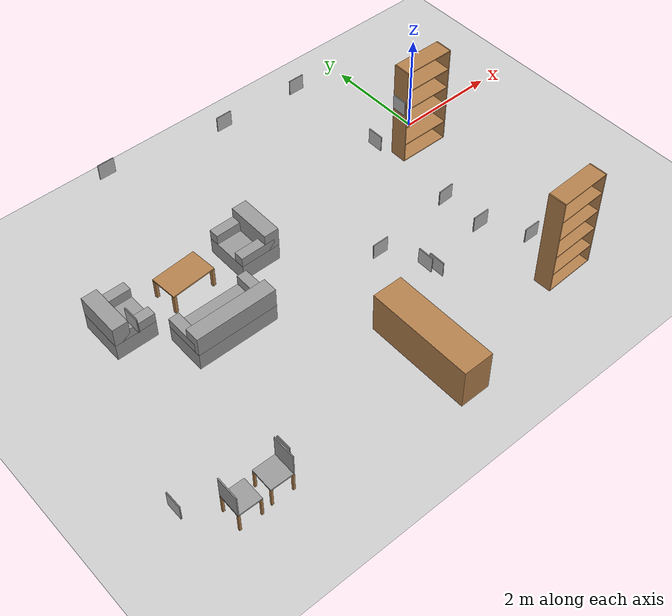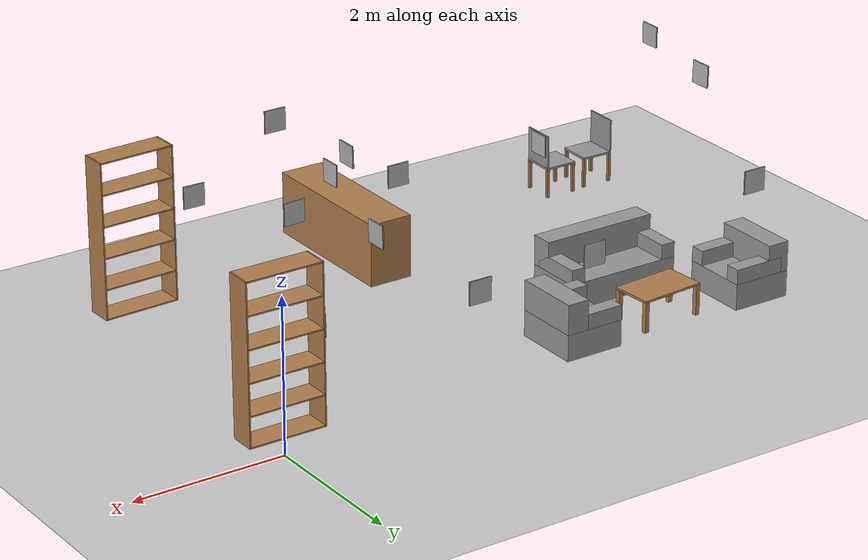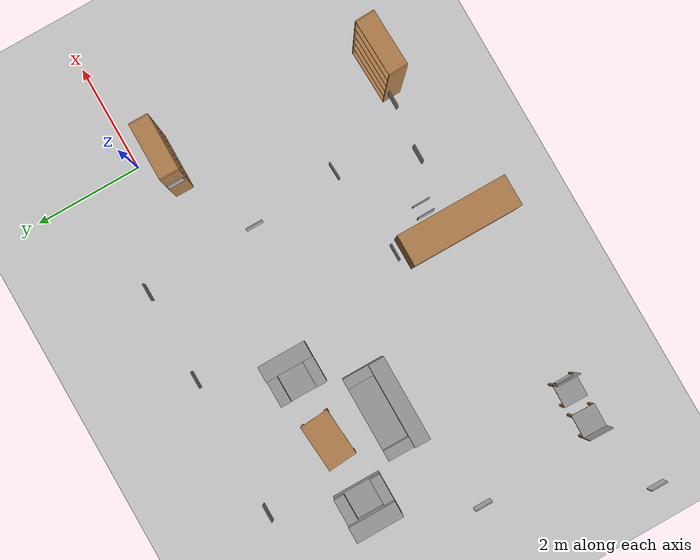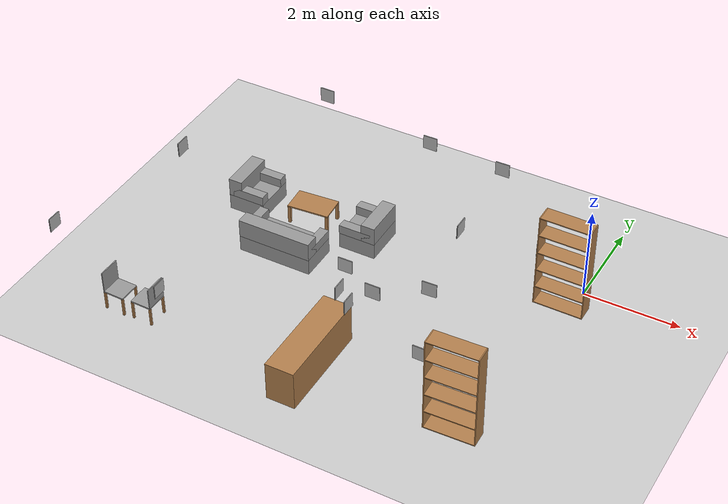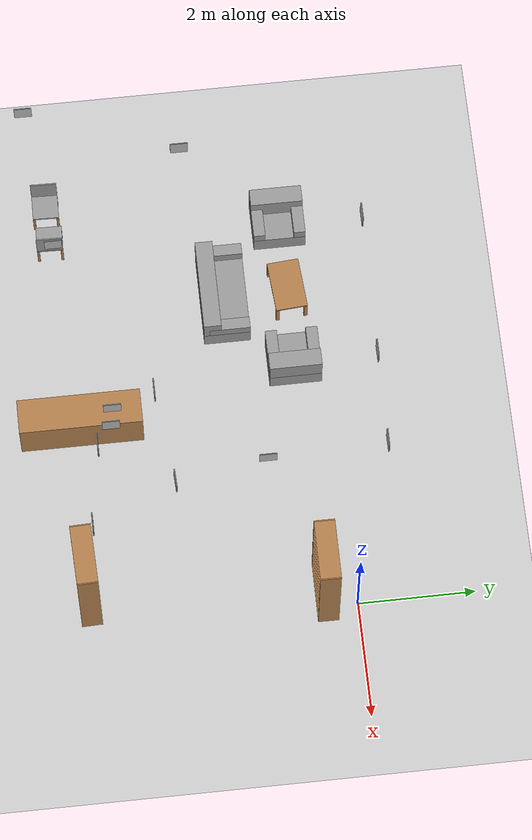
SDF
<sdf version="1.6">
 <world name="GrannyAnnie">
  <model name="ground_plane">
   <static>1</static>
   <link name="link">
    <collision name="collision">
     <geometry><plane><normal>0 0 1</normal><size>100 100</size></plane></geometry>
     <surface><friction><ode><mu>100</mu><mu2>50</mu2></ode></friction></surface>
    </collision>
    <visual name="visual">
     <cast_shadows>0</cast_shadows>
     <geometry><plane><normal>0 0 1</normal><size>100 100</size></plane></geometry>
     <material>
      <script><uri>file://media/materials/scripts/gazebo.material</uri><name>Gazebo/Grey</name></script>
     </material>
    </visual>
    <velocity_decay><linear>0</linear><angular>0</angular></velocity_decay>
   </link>
  </model>
  <model name="tag_0">
   <pose>-8.90283 -4.82563 1.77057 0 1.56824 0</pose>
   <static>1</static>
   <link name="fronttag">
    <pose>0 0 0.01 0 -0 0</pose>
    <collision name="collision"><geometry><box><size>0.3 0.3 0.01</size></box></geometry></collision>
    <visual name="visual">
     <geometry><box><size>0.3 0.3 0.01</size></box></geometry>
     <material>
      <script><uri>file://tags_material/scripts/tags.material</uri><name>Tag36_11_00000</name></script>
     </material>
    </visual>
   </link>
   <link name="backcover">
    <collision name="collision"><geometry><box><size>0.3 0.3 0.01</size></box></geometry></collision>
    <visual name="visual"><geometry><box><size>0.3 0.3 0.01</size></box></geometry></visual>
   </link>
   <static>0</static>
  </model>
  <model name="tag_1">
   <pose>-3.79959 0.736049 1.82503 1.56834 -0 0</pose>
   <static>1</static>
   <link name="fronttag">
    <pose>0 0 0.01 0 -0 0</pose>
    <collision name="collision"><geometry><box><size>0.3 0.3 0.01</size></box></geometry></collision>
    <visual name="visual">
     <geometry><box><size>0.3 0.3 0.01</size></box></geometry>
     <material>
      <script><uri>file://tags_material/scripts/tags.material</uri><name>Tag36_11_00001</name></script>
     </material>
    </visual>
   </link>
   <link name="backcover">
    <collision name="collision"><geometry><box><size>0.3 0.3 0.01</size></box></geometry></collision>
    <visual name="visual"><geometry><box><size>0.3 0.3 0.01</size></box></geometry></visual>
   </link>
   <static>0</static>
  </model>
  <model name="tag_2">
   <pose>-2.19541 0.724153 1.76356 1.57188 -0 0</pose>
   <static>1</static>
   <link name="fronttag">
    <pose>0 0 0.01 0 -0 0</pose>
    <collision name="collision"><geometry><box><size>0.3 0.3 0.01</size></box></geometry></collision>
    <visual name="visual">
     <geometry><box><size>0.3 0.3 0.01</size></box></geometry>
     <material>
      <script><uri>file://tags_material/scripts/tags.material</uri><name>Tag36_11_00002</name></script>
     </material>
    </visual>
   </link>
   <link name="backcover">
    <collision name="collision"><geometry><box><size>0.3 0.3 0.01</size></box></geometry></collision>
    <visual name="visual"><geometry><box><size>0.3 0.3 0.01</size></box></geometry></visual>
   </link>
   <static>0</static>
  </model>
  <model name="tag_4">
   <pose>-3.59641 -3.06982 1.55694 -1.56469 0 0</pose>
   <static>1</static>
   <link name="fronttag">
    <pose>0 0 0.01 0 -0 0</pose>
    <collision name="collision"><geometry><box><size>0.3 0.3 0.01</size></box></geometry></collision>
    <visual name="visual">
     <geometry><box><size>0.3 0.3 0.01</size></box></geometry>
     <material>
      <script><uri>file://tags_material/scripts/tags.material</uri><name>Tag36_11_00004</name></script>
     </material>
    </visual>
   </link>
   <link name="backcover">
    <collision name="collision"><geometry><box><size>0.3 0.3 0.01</size></box></geometry></collision>
    <visual name="visual"><geometry><box><size>0.3 0.3 0.01</size></box></geometry></visual>
   </link>
   <static>0</static>
  </model>
  <model name="tag_5">
   <pose>-3.30159 -3.79558 1.65775 0 -1.53884 0</pose>
   <static>1</static>
   <link name="fronttag">
    <pose>0 0 0.01 0 -0 0</pose>
    <collision name="collision"><geometry><box><size>0.3 0.3 0.01</size></box></geometry></collision>
    <visual name="visual">
     <geometry><box><size>0.3 0.3 0.01</size></box></geometry>
     <material>
      <script><uri>file://tags_material/scripts/tags.material</uri><name>Tag36_11_00005</name></script>
     </material>
    </visual>
   </link>
   <link name="backcover">
    <collision name="collision"><geometry><box><size>0.3 0.3 0.01</size></box></geometry></collision>
    <visual name="visual"><geometry><box><size>0.3 0.3 0.01</size></box></geometry></visual>
   </link>
   <static>0</static>
  </model>
  <model name="tag_6">
   <pose>-1.946 -2.8722 1.52035 -1.52458 -1.56567 -2e-06</pose>
   <static>1</static>
   <link name="fronttag">
    <pose>0 0 0.01 0 -0 0</pose>
    <collision name="collision"><geometry><box><size>0.3 0.3 0.01</size></box></geometry></collision>
    <visual name="visual">
     <geometry><box><size>0.3 0.3 0.01</size></box></geometry>
     <material>
      <script><uri>file://tags_material/scripts/tags.material</uri><name>Tag36_11_00006</name></script>
     </material>
    </visual>
   </link>
   <link name="backcover">
    <collision name="collision"><geometry><box><size>0.3 0.3 0.01</size></box></geometry></collision>
    <visual name="visual"><geometry><box><size>0.3 0.3 0.01</size></box></geometry></visual>
   </link>
   <static>0</static>
  </model>
  <model name="tag_11">
   <pose>-2.09998 -1.29478 1.76493 0 -1.55113 0</pose>
   <static>1</static>
   <link name="fronttag">
    <pose>0 0 0.01 0 -0 0</pose>
    <collision name="collision"><geometry><box><size>0.3 0.3 0.01</size></box></geometry></collision>
    <visual name="visual">
     <geometry><box><size>0.3 0.3 0.01</size></box></geometry>
     <material>
      <script><uri>file://tags_material/scripts/tags.material</uri><name>Tag36_11_00011</name></script>
     </material>
    </visual>
   </link>
   <link name="backcover">
    <collision name="collision"><geometry><box><size>0.3 0.3 0.01</size></box></geometry></collision>
    <visual name="visual"><geometry><box><size>0.3 0.3 0.01</size></box></geometry></visual>
   </link>
   <static>0</static>
  </model>
  <model name="tag_12">
   <pose>-2.44858 -4.10191 2.20444 -1.56693 0 0</pose>
   <static>1</static>
   <link name="fronttag">
    <pose>0 0 0.01 0 -0 0</pose>
    <collision name="collision"><geometry><box><size>0.3 0.3 0.01</size></box></geometry></collision>
    <visual name="visual">
     <geometry><box><size>0.3 0.3 0.01</size></box></geometry>
     <material>
      <script><uri>file://tags_material/scripts/tags.material</uri><name>Tag36_11_00012</name></script>
     </material>
    </visual>
   </link>
   <link name="backcover">
    <collision name="collision"><geometry><box><size>0.3 0.3 0.01</size></box></geometry></collision>
    <visual name="visual"><geometry><box><size>0.3 0.3 0.01</size></box></geometry></visual>
   </link>
   <static>0</static>
  </model>
  <model name="tag_13">
   <pose>-0.785442 -0.509094 1.27848 0 -1.56858 0</pose>
   <static>1</static>
   <link name="fronttag">
    <pose>0 0 0.01 0 -0 0</pose>
    <collision name="collision"><geometry><box><size>0.3 0.3 0.01</size></box></geometry></collision>
    <visual name="visual">
     <geometry><box><size>0.3 0.3 0.01</size></box></geometry>
     <material>
      <script><uri>file://tags_material/scripts/tags.material</uri><name>Tag36_11_00013</name></script>
     </material>
    </visual>
   </link>
   <link name="backcover">
    <collision name="collision"><geometry><box><size>0.3 0.3 0.01</size></box></geometry></collision>
    <visual name="visual"><geometry><box><size>0.3 0.3 0.01</size></box></geometry></visual>
   </link>
   <static>0</static>
  </model>
  <model name="tag_14">
   <pose>-7.70318 -2.23139 2.27545 0 1.54163 0</pose>
   <static>1</static>
   <link name="fronttag">
    <pose>0 0 0.01 0 -0 0</pose>
    <collision name="collision"><geometry><box><size>0.3 0.3 0.01</size></box></geometry></collision>
    <visual name="visual">
     <geometry><box><size>0.3 0.3 0.01</size></box></geometry>
     <material>
      <script><uri>file://tags_material/scripts/tags.material</uri><name>Tag36_11_00014</name></script>
     </material>
    </visual>
   </link>
   <link name="backcover">
    <collision name="collision"><geometry><box><size>0.3 0.3 0.01</size></box></geometry></collision>
    <visual name="visual"><geometry><box><size>0.3 0.3 0.01</size></box></geometry></visual>
   </link>
   <static>0</static>
  </model>
  <model name="tag_15">
   <pose>-6.16342 0.735901 2.18535 1.56173 -0 0</pose>
   <static>1</static>
   <link name="fronttag">
    <pose>0 0 0.01 0 -0 0</pose>
    <collision name="collision"><geometry><box><size>0.3 0.3 0.01</size></box></geometry></collision>
    <visual name="visual">
     <geometry><box><size>0.3 0.3 0.01</size></box></geometry>
     <material>
      <script><uri>file://tags_material/scripts/tags.material</uri><name>Tag36_11_00015</name></script>
     </material>
    </visual>
   </link>
   <link name="backcover">
    <collision name="collision"><geometry><box><size>0.3 0.3 0.01</size></box></geometry></collision>
    <visual name="visual"><geometry><box><size>0.3 0.3 0.01</size></box></geometry></visual>
   </link>
   <static>0</static>
  </model>
  <model name="tag_16">
   <pose>-6.83691 -4.53136 0.739113 0 1.57048 0</pose>
   <static>1</static>
   <link name="fronttag">
    <pose>0 0 0.01 0 -0 0</pose>
    <collision name="collision"><geometry><box><size>0.3 0.3 0.01</size></box></geometry></collision>
    <visual name="visual">
     <geometry><box><size>0.3 0.3 0.01</size></box></geometry>
     <material>
      <script><uri>file://tags_material/scripts/tags.material</uri><name>Tag36_11_00000</name></script>
     </material>
    </visual>
   </link>
   <link name="backcover">
    <collision name="collision"><geometry><box><size>0.3 0.3 0.01</size></box></geometry></collision>
    <visual name="visual"><geometry><box><size>0.3 0.3 0.01</size></box></geometry></visual>
   </link>
   <static>0</static>
  </model>
  <model name="tag_17">
   <pose>-1.37962 -4.30217 1.36859 1.57346 -0 0</pose>
   <static>1</static>
   <link name="fronttag">
    <pose>0 0 0.01 0 -0 0</pose>
    <collision name="collision"><geometry><box><size>0.3 0.3 0.01</size></box></geometry></collision>
    <visual name="visual">
     <geometry><box><size>0.3 0.3 0.01</size></box></geometry>
     <material>
      <script><uri>file://tags_material/scripts/tags.material</uri><name>Tag36_11_00017</name></script>
     </material>
    </visual>
   </link>
   <link name="backcover">
    <collision name="collision"><geometry><box><size>0.3 0.3 0.01</size></box></geometry></collision>
    <visual name="visual"><geometry><box><size>0.3 0.3 0.01</size></box></geometry></visual>
   </link>
   <static>0</static>
  </model>
  <model name="tag_18">
   <pose>-3.09629 -3.84297 1.43623 0 1.55626 0</pose>
   <static>1</static>
   <link name="fronttag">
    <pose>0 0 0.01 0 -0 0</pose>
    <collision name="collision"><geometry><box><size>0.3 0.3 0.01</size></box></geometry></collision>
    <visual name="visual">
     <geometry><box><size>0.3 0.3 0.01</size></box></geometry>
     <material>
      <script><uri>file://tags_material/scripts/tags.material</uri><name>Tag36_11_00018</name></script>
     </material>
    </visual>
   </link>
   <link name="backcover">
    <collision name="collision"><geometry><box><size>0.3 0.3 0.01</size></box></geometry></collision>
    <visual name="visual"><geometry><box><size>0.3 0.3 0.01</size></box></geometry></visual>
   </link>
   <static>0</static>
  </model>
  <model name="silla_2">
   <link name="silla_link">
    <inertial>
     <pose>0.0215 0 0.353 0 -0 0</pose>
     <mass>2</mass>
     <inertia>
      <ixx>0.674432</ixx>
      <ixy>0</ixy>
      <ixz>-0.012986</ixz>
      <iyy>0.682753</iyy>
      <iyz>0</iyz>
      <izz>0.675561</izz>
     </inertia>
    </inertial>
    <collision name="silla_link_collision">
     <pose>0 0 0.415 0 -0 0</pose>
     <geometry><box><size>0.45 0.45 0.03</size></box></geometry>
     <surface><friction><ode><mu>1</mu><mu2>1</mu2></ode></friction></surface>
    </collision>
    <collision name="silla_link_collision_pata_1_link">
     <pose>0.205 0.205 0.2 0 -0 0</pose>
     <geometry><box><size>0.04 0.04 0.4</size></box></geometry>
     <surface><friction><ode><mu>1</mu><mu2>1</mu2></ode></friction></surface>
     <surface><friction><ode><mu>1</mu><mu2>1</mu2></ode></friction></surface>
    </collision>
    <collision name="silla_link_collision_pata_2_link">
     <pose>0.205 -0.205 0.2 0 -0 0</pose>
     <geometry><box><size>0.04 0.04 0.4</size></box></geometry>
     <surface><friction><ode><mu>1</mu><mu2>1</mu2></ode></friction></surface>
     <surface><friction><ode><mu>1</mu><mu2>1</mu2></ode></friction></surface>
    </collision>
    <collision name="silla_link_collision_pata_3_link">
     <pose>-0.205 -0.205 0.2 0 -0 0</pose>
     <geometry><box><size>0.04 0.04 0.4</size></box></geometry>
     <surface><friction><ode><mu>1</mu><mu2>1</mu2></ode></friction></surface>
     <surface><friction><ode><mu>1</mu><mu2>1</mu2></ode></friction></surface>
    </collision>
    <collision name="silla_link_collision_pata_4_link">
     <pose>-0.205 0.205 0.2 0 -0 0</pose>
     <geometry><box><size>0.04 0.04 0.4</size></box></geometry>
     <surface><friction><ode><mu>1</mu><mu2>1</mu2></ode></friction></surface>
     <surface><friction><ode><mu>1</mu><mu2>1</mu2></ode></friction></surface>
    </collision>
    <collision name="silla_link_collision_respaldo_link">
     <pose>0.215 0 0.655 0 -0 0</pose>
     <geometry><box><size>0.02 0.45 0.45</size></box></geometry>
     <surface><friction><ode><mu>1</mu><mu2>1</mu2></ode></friction></surface>
     <surface><friction><ode><mu>1</mu><mu2>1</mu2></ode></friction></surface>
    </collision>
    <visual name="silla_link_visual">
     <pose>0 0 0.415 0 -0 0</pose>
     <geometry><box><size>0.45 0.45 0.03</size></box></geometry>
     <material><script><name>Gazebo/Grey</name><uri>__default__</uri></script></material>
    </visual>
    <visual name="silla_link_visual_pata_1_link">
     <pose>0.205 0.205 0.2 0 -0 0</pose>
     <geometry><box><size>0.04 0.04 0.4</size></box></geometry>
     <material><script><name>Gazebo/Wood</name><uri>__default__</uri></script></material>
    </visual>
    <visual name="silla_link_visual_pata_2_link">
     <pose>0.205 -0.205 0.2 0 -0 0</pose>
     <geometry><box><size>0.04 0.04 0.4</size></box></geometry>
     <material><script><name>Gazebo/Wood</name><uri>__default__</uri></script></material>
    </visual>
    <visual name="silla_link_visual_pata_3_link">
     <pose>-0.205 -0.205 0.2 0 -0 0</pose>
     <geometry><box><size>0.04 0.04 0.4</size></box></geometry>
     <material><script><name>Gazebo/Wood</name><uri>__default__</uri></script></material>
    </visual>
    <visual name="silla_link_visual_pata_4_link">
     <pose>-0.205 0.205 0.2 0 -0 0</pose>
     <geometry><box><size>0.04 0.04 0.4</size></box></geometry>
     <material><script><name>Gazebo/Wood</name><uri>__default__</uri></script></material>
    </visual>
    <visual name="silla_link_visual_respaldo_link">
     <pose>0.215 0 0.655 0 -0 0</pose>
     <geometry><box><size>0.02 0.45 0.45</size></box></geometry>
     <material><script><name>Gazebo/Grey</name><uri>__default__</uri></script></material>
    </visual>
    <velocity_decay><linear>0</linear><angular>0</angular></velocity_decay>
    <velocity_decay><linear>0</linear><angular>0</angular></velocity_decay>
    <velocity_decay><linear>0</linear><angular>0</angular></velocity_decay>
    <velocity_decay><linear>0</linear><angular>0</angular></velocity_decay>
    <velocity_decay><linear>0</linear><angular>0</angular></velocity_decay>
    <velocity_decay><linear>0</linear><angular>0</angular></velocity_decay>
    <self_collide>1</self_collide>
   </link>
   <pose>-7.09052 -4.58985 3e-06 1.3e-05 -0 -0.019338</pose>
   <static>0</static>
  </model>
  <model name="silla_4">
   <link name="silla_link">
    <inertial>
     <pose>0.0215 0 0.353 0 -0 0</pose>
     <mass>2</mass>
     <inertia>
      <ixx>0.674432</ixx>
      <ixy>0</ixy>
      <ixz>-0.012986</ixz>
      <iyy>0.682753</iyy>
      <iyz>0</iyz>
      <izz>0.675561</izz>
     </inertia>
    </inertial>
    <collision name="silla_link_collision">
     <pose>0 0 0.415 0 -0 0</pose>
     <geometry><box><size>0.45 0.45 0.03</size></box></geometry>
     <surface><friction><ode><mu>1</mu><mu2>1</mu2></ode></friction></surface>
    </collision>
    <collision name="silla_link_collision_pata_1_link">
     <pose>0.205 0.205 0.2 0 -0 0</pose>
     <geometry><box><size>0.04 0.04 0.4</size></box></geometry>
     <surface><friction><ode><mu>1</mu><mu2>1</mu2></ode></friction></surface>
     <surface><friction><ode><mu>1</mu><mu2>1</mu2></ode></friction></surface>
    </collision>
    <collision name="silla_link_collision_pata_2_link">
     <pose>0.205 -0.205 0.2 0 -0 0</pose>
     <geometry><box><size>0.04 0.04 0.4</size></box></geometry>
     <surface><friction><ode><mu>1</mu><mu2>1</mu2></ode></friction></surface>
     <surface><friction><ode><mu>1</mu><mu2>1</mu2></ode></friction></surface>
    </collision>
    <collision name="silla_link_collision_pata_3_link">
     <pose>-0.205 -0.205 0.2 0 -0 0</pose>
     <geometry><box><size>0.04 0.04 0.4</size></box></geometry>
     <surface><friction><ode><mu>1</mu><mu2>1</mu2></ode></friction></surface>
     <surface><friction><ode><mu>1</mu><mu2>1</mu2></ode></friction></surface>
    </collision>
    <collision name="silla_link_collision_pata_4_link">
     <pose>-0.205 0.205 0.2 0 -0 0</pose>
     <geometry><box><size>0.04 0.04 0.4</size></box></geometry>
     <surface><friction><ode><mu>1</mu><mu2>1</mu2></ode></friction></surface>
     <surface><friction><ode><mu>1</mu><mu2>1</mu2></ode></friction></surface>
    </collision>
    <collision name="silla_link_collision_respaldo_link">
     <pose>0.215 0 0.655 0 -0 0</pose>
     <geometry><box><size>0.02 0.45 0.45</size></box></geometry>
     <surface><friction><ode><mu>1</mu><mu2>1</mu2></ode></friction></surface>
     <surface><friction><ode><mu>1</mu><mu2>1</mu2></ode></friction></surface>
    </collision>
    <visual name="silla_link_visual">
     <pose>0 0 0.415 0 -0 0</pose>
     <geometry><box><size>0.45 0.45 0.03</size></box></geometry>
     <material><script><name>Gazebo/Grey</name><uri>__default__</uri></script></material>
    </visual>
    <visual name="silla_link_visual_pata_1_link">
     <pose>0.205 0.205 0.2 0 -0 0</pose>
     <geometry><box><size>0.04 0.04 0.4</size></box></geometry>
     <material><script><name>Gazebo/Wood</name><uri>__default__</uri></script></material>
    </visual>
    <visual name="silla_link_visual_pata_2_link">
     <pose>0.205 -0.205 0.2 0 -0 0</pose>
     <geometry><box><size>0.04 0.04 0.4</size></box></geometry>
     <material><script><name>Gazebo/Wood</name><uri>__default__</uri></script></material>
    </visual>
    <visual name="silla_link_visual_pata_3_link">
     <pose>-0.205 -0.205 0.2 0 -0 0</pose>
     <geometry><box><size>0.04 0.04 0.4</size></box></geometry>
     <material><script><name>Gazebo/Wood</name><uri>__default__</uri></script></material>
    </visual>
    <visual name="silla_link_visual_pata_4_link">
     <pose>-0.205 0.205 0.2 0 -0 0</pose>
     <geometry><box><size>0.04 0.04 0.4</size></box></geometry>
     <material><script><name>Gazebo/Wood</name><uri>__default__</uri></script></material>
    </visual>
    <visual name="silla_link_visual_respaldo_link">
     <pose>0.215 0 0.655 0 -0 0</pose>
     <geometry><box><size>0.02 0.45 0.45</size></box></geometry>
     <material><script><name>Gazebo/Grey</name><uri>__default__</uri></script></material>
    </visual>
    <velocity_decay><linear>0</linear><angular>0</angular></velocity_decay>
    <velocity_decay><linear>0</linear><angular>0</angular></velocity_decay>
    <velocity_decay><linear>0</linear><angular>0</angular></velocity_decay>
    <velocity_decay><linear>0</linear><angular>0</angular></velocity_decay>
    <velocity_decay><linear>0</linear><angular>0</angular></velocity_decay>
    <velocity_decay><linear>0</linear><angular>0</angular></velocity_decay>
    <self_collide>1</self_collide>
   </link>
   <pose>-7.71021 -4.61003 3e-06 1.3e-05 -0 3.12234</pose>
   <static>0</static>
  </model>
  <model name="mesa_salon">
   <link name="mesa_link">
    <inertial>
     <pose>0 0 0.3075 0 -0 0</pose>
     <mass>4</mass>
     <inertia>
      <ixx>0.666275</ixx>
      <ixy>1.92593e-34</ixy>
      <ixz>1.70697e-17</ixz>
      <iyy>0.899025</iyy>
      <iyz>4.26742e-18</iyz>
      <izz>0.97285</izz>
     </inertia>
    </inertial>
    <collision name="mesa_link_collision">
     <pose>0 0 0.415 0 -0 0</pose>
     <geometry><box><size>0.9 0.55 0.03</size></box></geometry>
     <surface><friction><ode><mu>1</mu><mu2>1</mu2></ode></friction></surface>
    </collision>
    <collision name="mesa_link_collision_pata_1_link">
     <pose>0.42 0.245 0.2 0 -0 0</pose>
     <geometry><box><size>0.06 0.06 0.4</size></box></geometry>
     <surface><friction><ode><mu>1</mu><mu2>1</mu2></ode></friction></surface>
     <surface><friction><ode><mu>1</mu><mu2>1</mu2></ode></friction></surface>
    </collision>
    <collision name="mesa_link_collision_pata_2_link">
     <pose>0.42 -0.245 0.2 0 -0 0</pose>
     <geometry><box><size>0.06 0.06 0.4</size></box></geometry>
     <surface><friction><ode><mu>1</mu><mu2>1</mu2></ode></friction></surface>
     <surface><friction><ode><mu>1</mu><mu2>1</mu2></ode></friction></surface>
    </collision>
    <collision name="mesa_link_collision_pata_3_link">
     <pose>-0.42 -0.245 0.2 0 -0 0</pose>
     <geometry><box><size>0.06 0.06 0.4</size></box></geometry>
     <surface><friction><ode><mu>1</mu><mu2>1</mu2></ode></friction></surface>
     <surface><friction><ode><mu>1</mu><mu2>1</mu2></ode></friction></surface>
    </collision>
    <collision name="mesa_link_collision_pata_4_link">
     <pose>-0.42 0.245 0.2 0 -0 0</pose>
     <geometry><box><size>0.06 0.06 0.4</size></box></geometry>
     <surface><friction><ode><mu>1</mu><mu2>1</mu2></ode></friction></surface>
     <surface><friction><ode><mu>1</mu><mu2>1</mu2></ode></friction></surface>
    </collision>
    <visual name="mesa_link_visual">
     <pose>0 0 0.415 0 -0 0</pose>
     <geometry><box><size>0.9 0.55 0.03</size></box></geometry>
     <material><script><name>Gazebo/Wood</name><uri>__default__</uri></script></material>
    </visual>
    <visual name="mesa_link_visual_pata_1_link">
     <pose>0.42 0.245 0.2 0 -0 0</pose>
     <geometry><box><size>0.06 0.06 0.4</size></box></geometry>
     <material><script><name>Gazebo/Wood</name><uri>__default__</uri></script></material>
    </visual>
    <visual name="mesa_link_visual_pata_2_link">
     <pose>0.42 -0.245 0.2 0 -0 0</pose>
     <geometry><box><size>0.06 0.06 0.4</size></box></geometry>
     <material><script><name>Gazebo/Wood</name><uri>__default__</uri></script></material>
    </visual>
    <visual name="mesa_link_visual_pata_3_link">
     <pose>-0.42 -0.245 0.2 0 -0 0</pose>
     <geometry><box><size>0.06 0.06 0.4</size></box></geometry>
     <material><script><name>Gazebo/Wood</name><uri>__default__</uri></script></material>
    </visual>
    <visual name="mesa_link_visual_pata_4_link">
     <pose>-0.42 0.245 0.2 0 -0 0</pose>
     <geometry><box><size>0.06 0.06 0.4</size></box></geometry>
     <material><script><name>Gazebo/Wood</name><uri>__default__</uri></script></material>
    </visual>
    <velocity_decay><linear>0</linear><angular>0</angular></velocity_decay>
    <velocity_decay><linear>0</linear><angular>0</angular></velocity_decay>
    <velocity_decay><linear>0</linear><angular>0</angular></velocity_decay>
    <velocity_decay><linear>0</linear><angular>0</angular></velocity_decay>
    <velocity_decay><linear>0</linear><angular>0</angular></velocity_decay>
    <self_collide>1</self_collide>
   </link>
   <pose>-5.7847 -0.568032 0 0 -0 0.076884</pose>
   <static>0</static>
  </model>
  <model name="sofa_x2_salon">
   <link name="sofa_link">
    <inertial>
     <pose>0 0.011539 0.257692 0 -0 0</pose>
     <mass>13</mass>
     <inertia>
      <ixx>0.7625</ixx>
      <ixy>0</ixy>
      <ixz>0</ixz>
      <iyy>1.67673</iyy>
      <iyz>-0.0463462</iyz>
      <izz>1.44577</izz>
     </inertia>
    </inertial>
    <collision name="sofa_link_collision">
     <pose>0 0 0.175 0 -0 0</pose>
     <geometry><box><size>1.6 0.8 0.35</size></box></geometry>
     <surface><friction><ode><mu>1</mu><mu2>1</mu2></ode></friction></surface>
    </collision>
    <collision name="sofa_link_collision_brazo_1_link">
     <pose>0.7 -0.05 0.45 0 -0 0</pose>
     <geometry><box><size>0.2 0.7 0.2</size></box></geometry>
     <surface><friction><ode><mu>1</mu><mu2>1</mu2></ode></friction></surface>
     <surface><friction><ode><mu>1</mu><mu2>1</mu2></ode></friction></surface>
    </collision>
    <collision name="sofa_link_collision_brazo_2_link">
     <pose>-0.7 -0.05 0.45 0 -0 0</pose>
     <geometry><box><size>0.2 0.7 0.2</size></box></geometry>
     <surface><friction><ode><mu>1</mu><mu2>1</mu2></ode></friction></surface>
     <surface><friction><ode><mu>1</mu><mu2>1</mu2></ode></friction></surface>
    </collision>
    <collision name="sofa_link_collision_respaldo_link">
     <pose>0 0.25 0.55 0 -0 0</pose>
     <geometry><box><size>1.6 0.3 0.4</size></box></geometry>
     <surface><friction><ode><mu>1</mu><mu2>1</mu2></ode></friction></surface>
     <surface><friction><ode><mu>1</mu><mu2>1</mu2></ode></friction></surface>
    </collision>
    <visual name="sofa_link_visual">
     <pose>0 0 0.175 0 -0 0</pose>
     <geometry><box><size>1.6 0.8 0.35</size></box></geometry>
     <material><script><name>Gazebo/Grey</name><uri>__default__</uri></script></material>
    </visual>
    <visual name="sofa_link_visual_brazo_1_link">
     <pose>0.7 -0.05 0.45 0 -0 0</pose>
     <geometry><box><size>0.2 0.7 0.2</size></box></geometry>
     <material><script><name>Gazebo/Grey</name><uri>__default__</uri></script></material>
    </visual>
    <visual name="sofa_link_visual_brazo_2_link">
     <pose>-0.7 -0.05 0.45 0 -0 0</pose>
     <geometry><box><size>0.2 0.7 0.2</size></box></geometry>
     <material><script><name>Gazebo/Grey</name><uri>__default__</uri></script></material>
    </visual>
    <visual name="sofa_link_visual_respaldo_link">
     <pose>0 0.25 0.55 0 -0 0</pose>
     <geometry><box><size>1.6 0.3 0.4</size></box></geometry>
     <material><script><name>Gazebo/Grey</name><uri>__default__</uri></script></material>
    </visual>
    <velocity_decay><linear>0</linear><angular>0</angular></velocity_decay>
    <velocity_decay><linear>0</linear><angular>0</angular></velocity_decay>
    <velocity_decay><linear>0</linear><angular>0</angular></velocity_decay>
    <velocity_decay><linear>0</linear><angular>0</angular></velocity_decay>
    <self_collide>1</self_collide>
   </link>
   <pose>-5.79876 -1.68983 -0.000492 -0.001229 -0 3.14049</pose>
   <static>0</static>
  </model>
  <model name="sofa_x1_1_salon">
   <link name="sofa_link">
    <inertial>
     <pose>0 0.01875 0.309375 0 -0 0</pose>
     <mass>8</mass>
     <inertia>
      <ixx>0.705859</ixx>
      <ixy>0</ixy>
      <ixz>0</ixz>
      <iyy>0.886172</iyy>
      <iyz>-0.0385938</iyz>
      <izz>0.709687</izz>
     </inertia>
    </inertial>
    <collision name="sofa_link_collision">
     <pose>0 0 0.175 0 -0 0</pose>
     <geometry><box><size>0.9 0.8 0.35</size></box></geometry>
     <surface><friction><ode><mu>1</mu><mu2>1</mu2></ode></friction></surface>
    </collision>
    <collision name="sofa_link_collision_brazo_1_link">
     <pose>0.35 -0.05 0.45 0 -0 0</pose>
     <geometry><box><size>0.2 0.7 0.2</size></box></geometry>
     <surface><friction><ode><mu>1</mu><mu2>1</mu2></ode></friction></surface>
     <surface><friction><ode><mu>1</mu><mu2>1</mu2></ode></friction></surface>
    </collision>
    <collision name="sofa_link_collision_brazo_2_link">
     <pose>-0.35 -0.05 0.45 0 -0 0</pose>
     <geometry><box><size>0.2 0.7 0.2</size></box></geometry>
     <surface><friction><ode><mu>1</mu><mu2>1</mu2></ode></friction></surface>
     <surface><friction><ode><mu>1</mu><mu2>1</mu2></ode></friction></surface>
    </collision>
    <collision name="sofa_link_collision_respaldo_link">
     <pose>0 0.25 0.55 0 -0 0</pose>
     <geometry><box><size>0.9 0.3 0.4</size></box></geometry>
     <surface><friction><ode><mu>1</mu><mu2>1</mu2></ode></friction></surface>
     <surface><friction><ode><mu>1</mu><mu2>1</mu2></ode></friction></surface>
    </collision>
    <visual name="sofa_link_visual">
     <pose>0 0 0.175 0 -0 0</pose>
     <geometry><box><size>0.9 0.8 0.35</size></box></geometry>
     <material><script><name>Gazebo/Grey</name><uri>__default__</uri></script></material>
    </visual>
    <visual name="sofa_link_visual_brazo_1_link">
     <pose>0.35 -0.05 0.45 0 -0 0</pose>
     <geometry><box><size>0.2 0.7 0.2</size></box></geometry>
     <material><script><name>Gazebo/Grey</name><uri>__default__</uri></script></material>
    </visual>
    <visual name="sofa_link_visual_brazo_2_link">
     <pose>-0.35 -0.05 0.45 0 -0 0</pose>
     <geometry><box><size>0.2 0.7 0.2</size></box></geometry>
     <material><script><name>Gazebo/Grey</name><uri>__default__</uri></script></material>
    </visual>
    <visual name="sofa_link_visual_respaldo_link">
     <pose>0 0.25 0.55 0 -0 0</pose>
     <geometry><box><size>0.9 0.3 0.4</size></box></geometry>
     <material><script><name>Gazebo/Grey</name><uri>__default__</uri></script></material>
    </visual>
    <velocity_decay><linear>0</linear><angular>0</angular></velocity_decay>
    <velocity_decay><linear>0</linear><angular>0</angular></velocity_decay>
    <velocity_decay><linear>0</linear><angular>0</angular></velocity_decay>
    <velocity_decay><linear>0</linear><angular>0</angular></velocity_decay>
    <self_collide>1</self_collide>
   </link>
   <pose>-4.5 -0.6 0 0 0 -1.57</pose>
   <static>0</static>
  </model>
  <model name="sofa_x1_2_salon">
   <link name="sofa_link">
    <inertial>
     <pose>0 0.01875 0.309375 0 -0 0</pose>
     <mass>8</mass>
     <inertia>
      <ixx>0.705859</ixx>
      <ixy>0</ixy>
      <ixz>0</ixz>
      <iyy>0.886172</iyy>
      <iyz>-0.0385938</iyz>
      <izz>0.709687</izz>
     </inertia>
    </inertial>
    <collision name="sofa_link_collision">
     <pose>0 0 0.175 0 -0 0</pose>
     <geometry><box><size>0.9 0.8 0.35</size></box></geometry>
     <surface><friction><ode><mu>1</mu><mu2>1</mu2></ode></friction></surface>
    </collision>
    <collision name="sofa_link_collision_brazo_1_link">
     <pose>0.35 -0.05 0.45 0 -0 0</pose>
     <geometry><box><size>0.2 0.7 0.2</size></box></geometry>
     <surface><friction><ode><mu>1</mu><mu2>1</mu2></ode></friction></surface>
     <surface><friction><ode><mu>1</mu><mu2>1</mu2></ode></friction></surface>
    </collision>
    <collision name="sofa_link_collision_brazo_2_link">
     <pose>-0.35 -0.05 0.45 0 -0 0</pose>
     <geometry><box><size>0.2 0.7 0.2</size></box></geometry>
     <surface><friction><ode><mu>1</mu><mu2>1</mu2></ode></friction></surface>
     <surface><friction><ode><mu>1</mu><mu2>1</mu2></ode></friction></surface>
    </collision>
    <collision name="sofa_link_collision_respaldo_link">
     <pose>0 0.25 0.55 0 -0 0</pose>
     <geometry><box><size>0.9 0.3 0.4</size></box></geometry>
     <surface><friction><ode><mu>1</mu><mu2>1</mu2></ode></friction></surface>
     <surface><friction><ode><mu>1</mu><mu2>1</mu2></ode></friction></surface>
    </collision>
    <visual name="sofa_link_visual">
     <pose>0 0 0.175 0 -0 0</pose>
     <geometry><box><size>0.9 0.8 0.35</size></box></geometry>
     <material><script><name>Gazebo/Grey</name><uri>__default__</uri></script></material>
    </visual>
    <visual name="sofa_link_visual_brazo_1_link">
     <pose>0.35 -0.05 0.45 0 -0 0</pose>
     <geometry><box><size>0.2 0.7 0.2</size></box></geometry>
     <material><script><name>Gazebo/Grey</name><uri>__default__</uri></script></material>
    </visual>
    <visual name="sofa_link_visual_brazo_2_link">
     <pose>-0.35 -0.05 0.45 0 -0 0</pose>
     <geometry><box><size>0.2 0.7 0.2</size></box></geometry>
     <material><script><name>Gazebo/Grey</name><uri>__default__</uri></script></material>
    </visual>
    <visual name="sofa_link_visual_respaldo_link">
     <pose>0 0.25 0.55 0 -0 0</pose>
     <geometry><box><size>0.9 0.3 0.4</size></box></geometry>
     <material><script><name>Gazebo/Grey</name><uri>__default__</uri></script></material>
    </visual>
    <velocity_decay><linear>0</linear><angular>0</angular></velocity_decay>
    <velocity_decay><linear>0</linear><angular>0</angular></velocity_decay>
    <velocity_decay><linear>0</linear><angular>0</angular></velocity_decay>
    <velocity_decay><linear>0</linear><angular>0</angular></velocity_decay>
    <self_collide>1</self_collide>
   </link>
   <pose>-7.1 -0.6 0 0 -0 1.57</pose>
   <static>0</static>
  </model>
  <model name="encimera">
   <link name="encimera_link">
    <inertial>
     <pose>0 0 0.425 0 -0 0</pose>
     <mass>50</mass>
     <inertia><ixx>5</ixx><ixy>0</ixy><ixz>0</ixz><iyy>5</iyy><iyz>0</iyz><izz>5</izz></inertia>
    </inertial>
    <collision name="encimera_link_collision">
     <pose>0 0 0.425 0 -0 0</pose>
     <geometry><box><size>2.1 0.6 0.85</size></box></geometry>
     <surface><friction><ode><mu>1</mu><mu2>1</mu2></ode></friction></surface>
    </collision>
    <visual name="encimera_link_visual">
     <pose>0 0 0.425 0 -0 0</pose>
     <geometry><box><size>2.1 0.6 0.85</size></box></geometry>
     <material><script><name>Gazebo/Wood</name><uri>__default__</uri></script></material>
    </visual>
    <velocity_decay><linear>0</linear><angular>0</angular></velocity_decay>
    <self_collide>1</self_collide>
   </link>
   <pose>-3.63775 -4.34903 5e-06 7.7e-05 2e-05 1.57067</pose>
   <static>0</static>
  </model>
  <model name="estanteria_1">
   <link name="estanteria_link">
    <inertial>
     <pose>0 0 1.046 0 -0 0</pose>
     <mass>10</mass>
     <inertia><ixx>3.12544</ixx><ixy>0</ixy><ixz>0</ixz><iyy>4.16584</iyy><iyz>0</iyz><izz>1.1204</izz></inertia>
    </inertial>
    <collision name="estanteria_link_collision">
     <pose>0 0 0.01 0 -0 0</pose>
     <geometry><box><size>1 0.35 0.02</size></box></geometry>
     <surface><friction><ode><mu>1</mu><mu2>1</mu2></ode></friction></surface>
    </collision>
    <collision name="estanteria_link_collision_basal_1_link">
     <pose>0 0 0.41 0 -0 0</pose>
     <geometry><box><size>1 0.35 0.02</size></box></geometry>
     <surface><friction><ode><mu>1</mu><mu2>1</mu2></ode></friction></surface>
     <surface><friction><ode><mu>1</mu><mu2>1</mu2></ode></friction></surface>
    </collision>
    <collision name="estanteria_link_collision_basal_2_link">
     <pose>0 0 0.83 0 -0 0</pose>
     <geometry><box><size>1 0.35 0.02</size></box></geometry>
     <surface><friction><ode><mu>1</mu><mu2>1</mu2></ode></friction></surface>
     <surface><friction><ode><mu>1</mu><mu2>1</mu2></ode></friction></surface>
    </collision>
    <collision name="estanteria_link_collision_basal_3_link">
     <pose>0 0 1.25 0 -0 0</pose>
     <geometry><box><size>1 0.35 0.02</size></box></geometry>
     <surface><friction><ode><mu>1</mu><mu2>1</mu2></ode></friction></surface>
     <surface><friction><ode><mu>1</mu><mu2>1</mu2></ode></friction></surface>
    </collision>
    <collision name="estanteria_link_collision_basal_4_link">
     <pose>0 0 1.67 0 -0 0</pose>
     <geometry><box><size>1 0.35 0.02</size></box></geometry>
     <surface><friction><ode><mu>1</mu><mu2>1</mu2></ode></friction></surface>
     <surface><friction><ode><mu>1</mu><mu2>1</mu2></ode></friction></surface>
    </collision>
    <collision name="estanteria_link_collision_basal_5_link">
     <pose>0 0 2.09 0 -0 0</pose>
     <geometry><box><size>1 0.35 0.02</size></box></geometry>
     <surface><friction><ode><mu>1</mu><mu2>1</mu2></ode></friction></surface>
     <surface><friction><ode><mu>1</mu><mu2>1</mu2></ode></friction></surface>
    </collision>
    <collision name="estanteria_link_collision_lateral_1_link">
     <pose>0.51 0 1.05 0 -0 0</pose>
     <geometry><box><size>0.02 0.35 2.1</size></box></geometry>
     <surface><friction><ode><mu>1</mu><mu2>1</mu2></ode></friction></surface>
     <surface><friction><ode><mu>1</mu><mu2>1</mu2></ode></friction></surface>
    </collision>
    <collision name="estanteria_link_collision_lateral_2_link">
     <pose>-0.51 0 1.05 0 -0 0</pose>
     <geometry><box><size>0.02 0.35 2.1</size></box></geometry>
     <surface><friction><ode><mu>1</mu><mu2>1</mu2></ode></friction></surface>
     <surface><friction><ode><mu>1</mu><mu2>1</mu2></ode></friction></surface>
    </collision>
    <visual name="estanteria_link_visual">
     <pose>0 0 0.01 0 -0 0</pose>
     <geometry><box><size>1 0.35 0.02</size></box></geometry>
     <material><script><name>Gazebo/Wood</name><uri>__default__</uri></script></material>
    </visual>
    <visual name="estanteria_link_visual_basal_1_link">
     <pose>0 0 0.41 0 -0 0</pose>
     <geometry><box><size>1 0.35 0.02</size></box></geometry>
     <material><script><name>Gazebo/Wood</name><uri>__default__</uri></script></material>
    </visual>
    <visual name="estanteria_link_visual_basal_2_link">
     <pose>0 0 0.83 0 -0 0</pose>
     <geometry><box><size>1 0.35 0.02</size></box></geometry>
     <material><script><name>Gazebo/Wood</name><uri>__default__</uri></script></material>
    </visual>
    <visual name="estanteria_link_visual_basal_3_link">
     <pose>0 0 1.25 0 -0 0</pose>
     <geometry><box><size>1 0.35 0.02</size></box></geometry>
     <material><script><name>Gazebo/Wood</name><uri>__default__</uri></script></material>
    </visual>
    <visual name="estanteria_link_visual_basal_4_link">
     <pose>0 0 1.67 0 -0 0</pose>
     <geometry><box><size>1 0.35 0.02</size></box></geometry>
     <material><script><name>Gazebo/Wood</name><uri>__default__</uri></script></material>
    </visual>
    <visual name="estanteria_link_visual_basal_5_link">
     <pose>0 0 2.09 0 -0 0</pose>
     <geometry><box><size>1 0.35 0.02</size></box></geometry>
     <material><script><name>Gazebo/Wood</name><uri>__default__</uri></script></material>
    </visual>
    <visual name="estanteria_link_visual_lateral_1_link">
     <pose>0.51 0 1.05 0 -0 0</pose>
     <geometry><box><size>0.02 0.35 2.1</size></box></geometry>
     <material><script><name>Gazebo/Wood</name><uri>__default__</uri></script></material>
    </visual>
    <visual name="estanteria_link_visual_lateral_2_link">
     <pose>-0.51 0 1.05 0 -0 0</pose>
     <geometry><box><size>0.02 0.35 2.1</size></box></geometry>
     <material><script><name>Gazebo/Wood</name><uri>__default__</uri></script></material>
    </visual>
    <velocity_decay><linear>0</linear><angular>0</angular></velocity_decay>
    <velocity_decay><linear>0</linear><angular>0</angular></velocity_decay>
    <velocity_decay><linear>0</linear><angular>0</angular></velocity_decay>
    <velocity_decay><linear>0</linear><angular>0</angular></velocity_decay>
    <velocity_decay><linear>0</linear><angular>0</angular></velocity_decay>
    <velocity_decay><linear>0</linear><angular>0</angular></velocity_decay>
    <velocity_decay><linear>0</linear><angular>0</angular></velocity_decay>
    <velocity_decay><linear>0</linear><angular>0</angular></velocity_decay>
    <self_collide>1</self_collide>
   </link>
   <pose>-0.262687 -0.521417 0.001214 -1e-06 0.002341 -0.005224</pose>
   <static>0</static>
  </model>
  <model name="estanteria_2">
   <link name="estanteria_link">
    <inertial>
     <pose>0 0 1.046 0 -0 0</pose>
     <mass>10</mass>
     <inertia><ixx>3.12544</ixx><ixy>0</ixy><ixz>0</ixz><iyy>4.16584</iyy><iyz>0</iyz><izz>1.1204</izz></inertia>
    </inertial>
    <collision name="estanteria_link_collision">
     <pose>0 0 0.01 0 -0 0</pose>
     <geometry><box><size>1 0.35 0.02</size></box></geometry>
     <surface><friction><ode><mu>1</mu><mu2>1</mu2></ode></friction></surface>
    </collision>
    <collision name="estanteria_link_collision_basal_1_link">
     <pose>0 0 0.41 0 -0 0</pose>
     <geometry><box><size>1 0.35 0.02</size></box></geometry>
     <surface><friction><ode><mu>1</mu><mu2>1</mu2></ode></friction></surface>
     <surface><friction><ode><mu>1</mu><mu2>1</mu2></ode></friction></surface>
    </collision>
    <collision name="estanteria_link_collision_basal_2_link">
     <pose>0 0 0.83 0 -0 0</pose>
     <geometry><box><size>1 0.35 0.02</size></box></geometry>
     <surface><friction><ode><mu>1</mu><mu2>1</mu2></ode></friction></surface>
     <surface><friction><ode><mu>1</mu><mu2>1</mu2></ode></friction></surface>
    </collision>
    <collision name="estanteria_link_collision_basal_3_link">
     <pose>0 0 1.25 0 -0 0</pose>
     <geometry><box><size>1 0.35 0.02</size></box></geometry>
     <surface><friction><ode><mu>1</mu><mu2>1</mu2></ode></friction></surface>
     <surface><friction><ode><mu>1</mu><mu2>1</mu2></ode></friction></surface>
    </collision>
    <collision name="estanteria_link_collision_basal_4_link">
     <pose>0 0 1.67 0 -0 0</pose>
     <geometry><box><size>1 0.35 0.02</size></box></geometry>
     <surface><friction><ode><mu>1</mu><mu2>1</mu2></ode></friction></surface>
     <surface><friction><ode><mu>1</mu><mu2>1</mu2></ode></friction></surface>
    </collision>
    <collision name="estanteria_link_collision_basal_5_link">
     <pose>0 0 2.09 0 -0 0</pose>
     <geometry><box><size>1 0.35 0.02</size></box></geometry>
     <surface><friction><ode><mu>1</mu><mu2>1</mu2></ode></friction></surface>
     <surface><friction><ode><mu>1</mu><mu2>1</mu2></ode></friction></surface>
    </collision>
    <collision name="estanteria_link_collision_lateral_1_link">
     <pose>0.51 0 1.05 0 -0 0</pose>
     <geometry><box><size>0.02 0.35 2.1</size></box></geometry>
     <surface><friction><ode><mu>1</mu><mu2>1</mu2></ode></friction></surface>
     <surface><friction><ode><mu>1</mu><mu2>1</mu2></ode></friction></surface>
    </collision>
    <collision name="estanteria_link_collision_lateral_2_link">
     <pose>-0.51 0 1.05 0 -0 0</pose>
     <geometry><box><size>0.02 0.35 2.1</size></box></geometry>
     <surface><friction><ode><mu>1</mu><mu2>1</mu2></ode></friction></surface>
     <surface><friction><ode><mu>1</mu><mu2>1</mu2></ode></friction></surface>
    </collision>
    <visual name="estanteria_link_visual">
     <pose>0 0 0.01 0 -0 0</pose>
     <geometry><box><size>1 0.35 0.02</size></box></geometry>
     <material><script><name>Gazebo/Wood</name><uri>__default__</uri></script></material>
    </visual>
    <visual name="estanteria_link_visual_basal_1_link">
     <pose>0 0 0.41 0 -0 0</pose>
     <geometry><box><size>1 0.35 0.02</size></box></geometry>
     <material><script><name>Gazebo/Wood</name><uri>__default__</uri></script></material>
    </visual>
    <visual name="estanteria_link_visual_basal_2_link">
     <pose>0 0 0.83 0 -0 0</pose>
     <geometry><box><size>1 0.35 0.02</size></box></geometry>
     <material><script><name>Gazebo/Wood</name><uri>__default__</uri></script></material>
    </visual>
    <visual name="estanteria_link_visual_basal_3_link">
     <pose>0 0 1.25 0 -0 0</pose>
     <geometry><box><size>1 0.35 0.02</size></box></geometry>
     <material><script><name>Gazebo/Wood</name><uri>__default__</uri></script></material>
    </visual>
    <visual name="estanteria_link_visual_basal_4_link">
     <pose>0 0 1.67 0 -0 0</pose>
     <geometry><box><size>1 0.35 0.02</size></box></geometry>
     <material><script><name>Gazebo/Wood</name><uri>__default__</uri></script></material>
    </visual>
    <visual name="estanteria_link_visual_basal_5_link">
     <pose>0 0 2.09 0 -0 0</pose>
     <geometry><box><size>1 0.35 0.02</size></box></geometry>
     <material><script><name>Gazebo/Wood</name><uri>__default__</uri></script></material>
    </visual>
    <visual name="estanteria_link_visual_lateral_1_link">
     <pose>0.51 0 1.05 0 -0 0</pose>
     <geometry><box><size>0.02 0.35 2.1</size></box></geometry>
     <material><script><name>Gazebo/Wood</name><uri>__default__</uri></script></material>
    </visual>
    <visual name="estanteria_link_visual_lateral_2_link">
     <pose>-0.51 0 1.05 0 -0 0</pose>
     <geometry><box><size>0.02 0.35 2.1</size></box></geometry>
     <material><script><name>Gazebo/Wood</name><uri>__default__</uri></script></material>
    </visual>
    <velocity_decay><linear>0</linear><angular>0</angular></velocity_decay>
    <velocity_decay><linear>0</linear><angular>0</angular></velocity_decay>
    <velocity_decay><linear>0</linear><angular>0</angular></velocity_decay>
    <velocity_decay><linear>0</linear><angular>0</angular></velocity_decay>
    <velocity_decay><linear>0</linear><angular>0</angular></velocity_decay>
    <velocity_decay><linear>0</linear><angular>0</angular></velocity_decay>
    <velocity_decay><linear>0</linear><angular>0</angular></velocity_decay>
    <velocity_decay><linear>0</linear><angular>0</angular></velocity_decay>
    <self_collide>1</self_collide>
   </link>
   <pose>-0.598743 -4.49683 -0.000134 7.6e-05 0.000241 0.034908</pose>
   <static>0</static>
  </model>
 </world>
</sdf>
